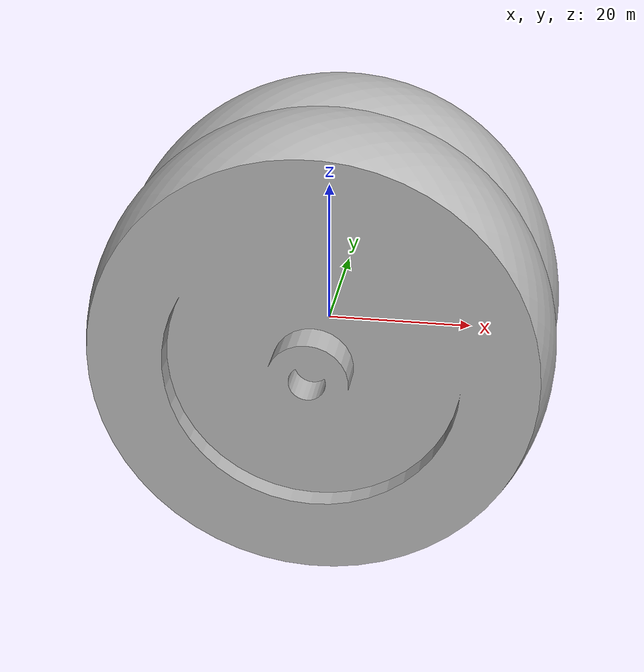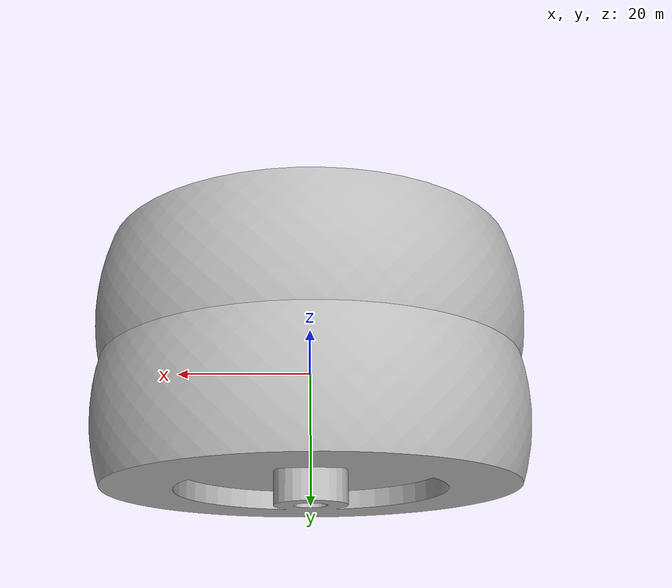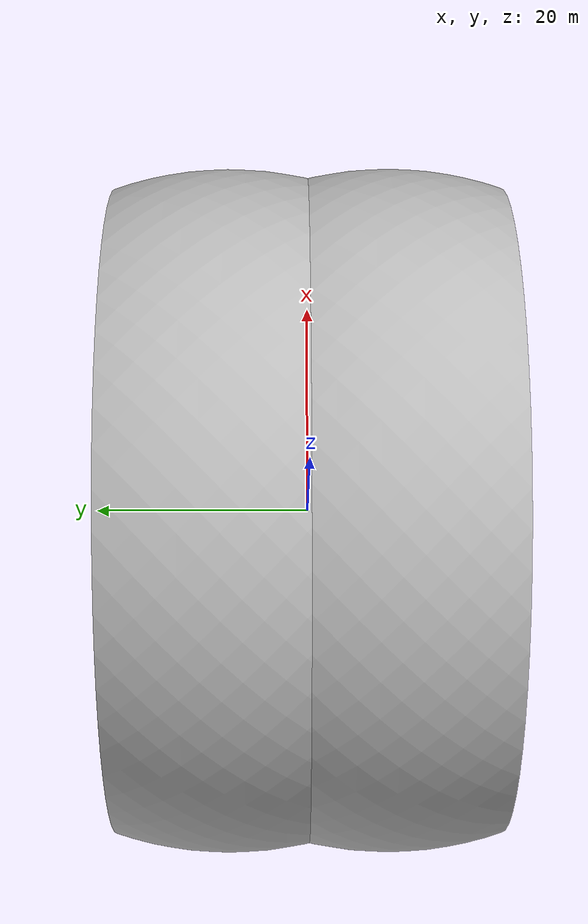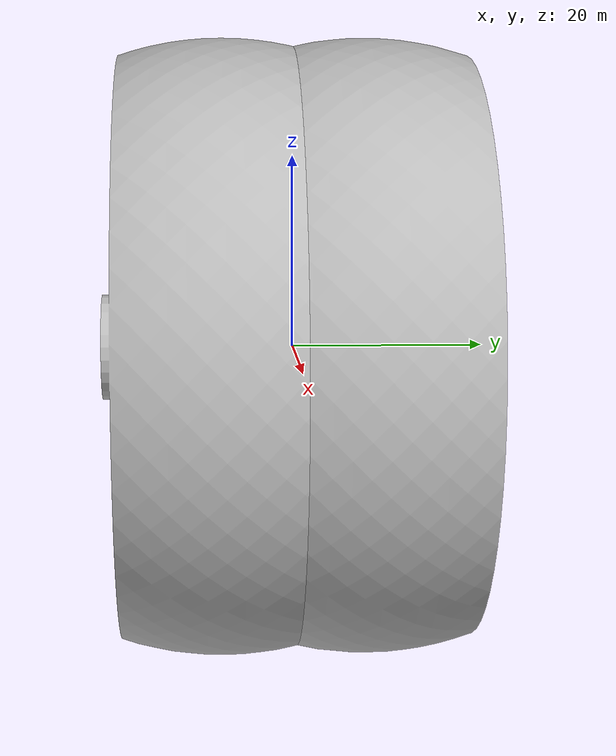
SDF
<?xml version="1.0" ?>
<sdf version="1.4">
  <model name="robot_thesis">
    <static>false</static>

    <link name="robot_base">
      <collision name="collision">
        <pose>0 0 .1025 0 0 0</pose>
        <geometry>
          <box>
            <size>.2 .2 .14</size>
          </box>
        </geometry>
      </collision>
      <visual name="visual">
        <pose>0 0 .0625 0 0 -1.5707</pose>
        <geometry>
          <mesh>
            <uri>model://robot_thesis/meshs/dae/robot_base.dae</uri>
          </mesh>
        </geometry>
      </visual>
      <collision name="caster_front_collision">
        <pose>-0.06 0 0.0325 0 0 0</pose>
        <geometry>
          <sphere>
            <radius>.0325</radius>
          </sphere>
        </geometry>
        <surface>
          <friction>
            <ode>
              <mu>0</mu>
              <mu2>0</mu2>
              <slip1>1.0</slip1>
              <slip2>1.0</slip2>
            </ode>
          </friction>
        </surface>
      </collision>
      <collision name="caster_behind_collision">
        <pose>0.06 0 0.0325 0 0 0</pose>
        <geometry>
          <sphere>
            <radius>.0325</radius>
          </sphere>
        </geometry>
        <surface>
          <friction>
            <ode>
              <mu>0</mu>
              <mu2>0</mu2>
              <slip1>1.0</slip1>
              <slip2>1.0</slip2>
            </ode>
          </friction>
        </surface>
      </collision>
    </link>

    <link name="robot_leftwheel">
      <pose>0 0.09 0.0325 0 1.5707 1.5707</pose>
      <collision name="collision">
        <geometry>
          <cylinder>
            <radius>.0325</radius>
            <length>.026</length>
          </cylinder>
        </geometry>
      </collision>
      <visual name="visual">
        <pose>0 0 0 -1.5707 0  0  </pose>
        <geometry>
          <mesh>
            <uri>model://robot_thesis/meshs/dae/robot_wheel.dae</uri>
          </mesh>
        </geometry>
      </visual>
    </link>

    <link name="robot_rightwheel">
      <pose>0 -0.09 0.0325 0 1.5707 1.5707</pose>
      <collision name="collision">
        <geometry>
          <cylinder>
            <radius>.0325</radius>
            <length>.026</length>
          </cylinder>
        </geometry>
      </collision>
      <visual name="visual">
        <pose>0 0 0 1.5707 0 0</pose>
        <geometry>
          <mesh>
            <uri>model://robot_thesis/meshs/dae/robot_wheel.dae</uri>
          </mesh>
        </geometry>
      </visual>
    </link>

    <joint type="revolute" name="left_wheel_hinge">
      <pose>0 0 -0.03 0 0 0</pose>
      <child>robot_leftwheel</child>
      <parent>robot_base</parent>
      <axis>
        <xyz>0 1 0</xyz>
      </axis>
    </joint>

    <joint type="revolute" name="right_wheel_hinge">
      <pose>0 0 0.03 0 0 0</pose>
      <child>robot_rightwheel</child>
      <parent>robot_base</parent>
      <axis>
        <xyz>0 1 0</xyz>
      </axis>
    </joint>

  </model>
</sdf>
